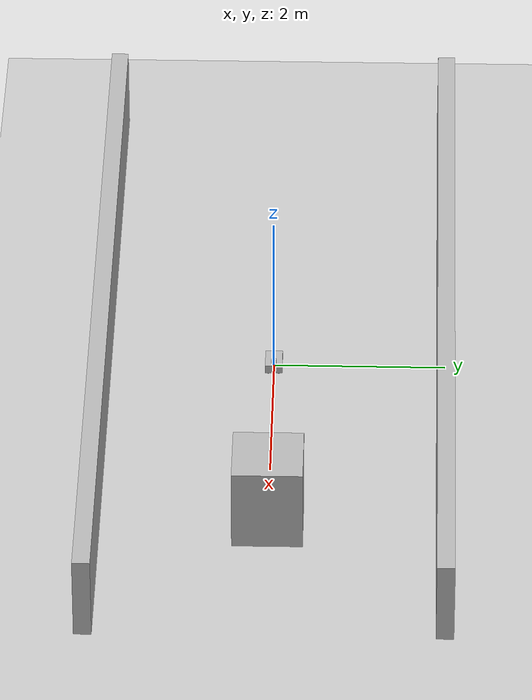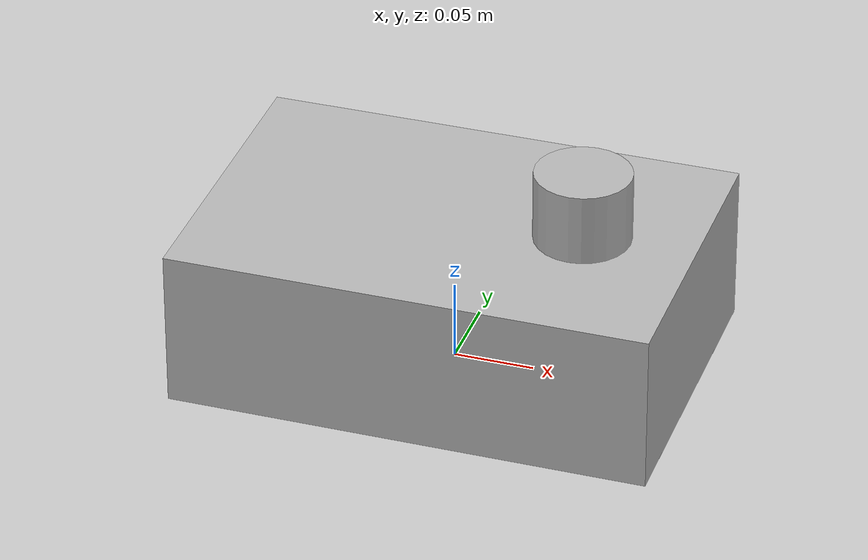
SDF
<?xml version="1.0" ?>
<sdf version="1.7">
  <world name="campus">

    <light name="sun" type="directional">
      <cast_shadows>true</cast_shadows>
      <pose>0 0 10 0 0 0</pose>
      <diffuse>1 1 1 1</diffuse>
      <specular>0.1 0.1 0.1 1</specular>
      <direction>-0.5 0.1 -1</direction>
    </light>

    <model name="ground">
      <static>true</static>
      <link name="link">
        <collision name="collision">
          <geometry>
            <plane>
              <normal>0 0 1</normal>
              <size>200 200</size>
            </plane>
          </geometry>
        </collision>
        <visual name="visual">
          <geometry>
            <plane>
              <normal>0 0 1</normal>
              <size>200 200</size>
            </plane>
          </geometry>
        </visual>
      </link>
    </model>

    <model name="left_wall">
    <static>true</static>
    <pose>0 2 0.5 0 0 0</pose>
    <link name="link">
      <collision name= "collision">
        <geometry>
          <box>
            <size>10 0.2 1</size>
          </box>
        </geometry>
      </collision>
      <visual name="visual">
        <geometry>
          <box>
            <size>10 0.2 1</size>
          </box>
        </geometry>
      </visual>
    </link>
    </model>

    <model name="right_wall">
    <static>true</static>
    <pose>0 -2 0.5 0 0 0</pose>
    <link name="link">
      <collision name= "collision">
        <geometry>
          <box>
            <size>10 0.2 1</size>
          </box>
        </geometry>
      </collision>
      <visual name="visual">
        <geometry>
          <box>
            <size>10 0.2 1</size>
          </box>
        </geometry>
      </visual>
    </link>
    </model>

    <model name="blocker">
    <static>true</static>
    <pose>3 0 0.5 0 0 0</pose>
    <link name="link">
      <collision name= "collision">
        <geometry>
          <box>
            <size>0.8 0.8 1</size>
          </box>
        </geometry>
      </collision>
      <visual name="visual">
        <geometry>
          <box>
            <size>0.8 0.8 1</size>
          </box>
        </geometry>
      </visual>
    </link>
    </model>
    <include>
      <uri>file:///home/scu2u/ros2_ws/src/scu2u_sim/models/scu2u_rover</uri>
      <name>scu2u_rover</name>
      <pose>0 0 0 0 0 0</pose>
    </include>
  </world>
</sdf>

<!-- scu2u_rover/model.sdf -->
<sdf version="1.9">
  <model name="scu2u_rover">
    <static>false</static>

    <!-- Chassis -->
    <link name="chassis_link">
      <pose>0 0 0 0 0 0</pose>

      <visual name="chassis_visual">
        <pose>0 0 0.05 0 0 0</pose>
        <geometry>
          <box><size>0.30 0.20 0.10</size></box>
        </geometry>
      </visual>

      <collision name="chassis_collision">
        <pose>0 0 0.05 0 0 0</pose>
        <geometry>
          <box><size>0.30 0.20 0.10</size></box>
        </geometry>
      </collision>

      <!-- Give it some inertia so physics is stable -->
      <inertial>
        <mass>5.0</mass>
        <inertia>
          <ixx>0.05</ixx><iyy>0.05</iyy><izz>0.05</izz>
          <ixy>0</ixy><ixz>0</ixz><iyz>0</iyz>
        </inertia>
      </inertial>
    </link>

    <!-- LiDAR link (mounted on chassis like your URDF: 0.08 0 0.12 relative to base) -->
    <link name="lidar_link">
      <pose>0.08 0 0.12 0 0 0</pose>

      <visual name="lidar_visual">
        <geometry>
          <cylinder><radius>0.03</radius><length>0.05</length></cylinder>
        </geometry>
      </visual>

      <!-- 360° CPU ray LiDAR -->
      <sensor name="lidar_2d" type="ray">
        <pose>0 0 0 0 0 0</pose>
        <update_rate>5</update_rate>
        <ray>
          <scan>
            <horizontal>
              <samples>720</samples>
              <resolution>1</resolution>
              <min_angle>-3.14159265359</min_angle>
              <max_angle>3.14159265359</max_angle>
            </horizontal>
          </scan>
          <range>
            <min>0.12</min>
            <max>10.0</max>
            <resolution>0.01</resolution>
          </range>
        </ray>
        <visualize>true</visualize>
      </sensor>
    </link>

    <joint name="lidar_joint" type="fixed">
      <parent>chassis_link</parent>
      <child>lidar_link</child>
    </joint>

    <!-- Wheels (simple visuals; you can add joints/drive later) -->
    <link name="wheel_fl">
      <pose>0.11 0.06 0.00 0 0 0</pose>
      <visual name="wheel_fl_visual">
        <pose>0 0 0 -1.5708 0 0</pose>
        <geometry>
          <cylinder><radius>0.04</radius><length>0.02</length></cylinder>
        </geometry>
      </visual>
    </link>

    <link name="wheel_fr">
      <pose>0.11 -0.06 0.00 0 0 0</pose>
      <visual name="wheel_fr_visual">
        <pose>0 0 0 -1.5708 0 0</pose>
        <geometry>
          <cylinder><radius>0.04</radius><length>0.02</length></cylinder>
        </geometry>
      </visual>
    </link>

    <link name="wheel_rl">
      <pose>-0.11 0.06 0.00 0 0 0</pose>
      <visual name="wheel_rl_visual">
        <pose>0 0 0 -1.5708 0 0</pose>
        <geometry>
          <cylinder><radius>0.04</radius><length>0.02</length></cylinder>
        </geometry>
      </visual>
    </link>

    <link name="wheel_rr">
      <pose>-0.11 -0.06 0.00 0 0 0</pose>
      <visual name="wheel_rr_visual">
        <pose>0 0 0 -1.5708 0 0</pose>
        <geometry>
          <cylinder><radius>0.04</radius><length>0.02</length></cylinder>
        </geometry>
      </visual>
    </link>

    <!-- Fix wheels to chassis for now (later we’ll make continuous joints and diff-drive) -->
    <joint name="wheel_fl_joint" type="fixed">
      <parent>chassis_link</parent><child>wheel_fl</child>
    </joint>
    <joint name="wheel_fr_joint" type="fixed">
      <parent>chassis_link</parent><child>wheel_fr</child>
    </joint>
    <joint name="wheel_rl_joint" type="fixed">
      <parent>chassis_link</parent><child>wheel_rl</child>
    </joint>
    <joint name="wheel_rr_joint" type="fixed">
      <parent>chassis_link</parent><child>wheel_rr</child>
    </joint>

  </model>
</sdf>
